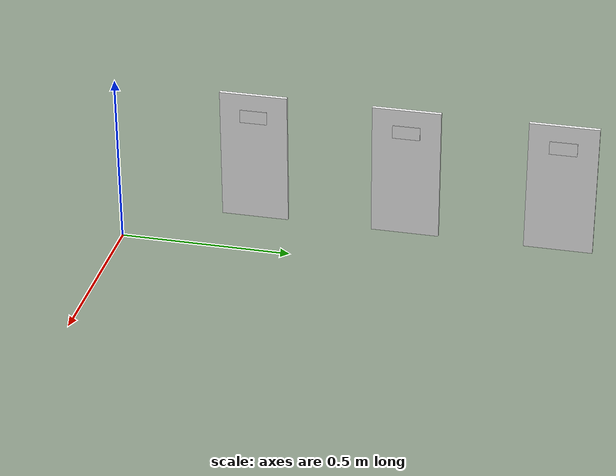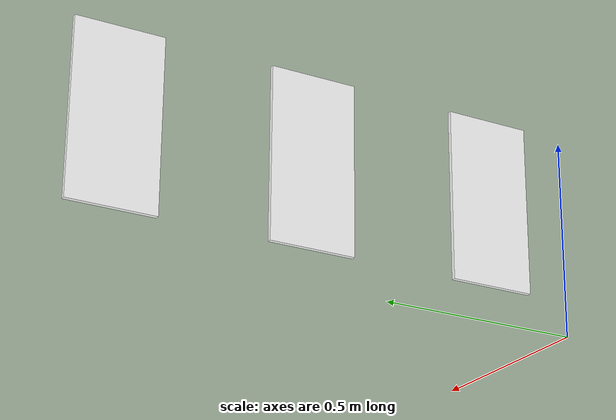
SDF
<?xml version="1.0" ?>
<sdf version="1.8">
  <model name="place_zone">
    <static>true</static>
    <link name="door_1">
      <pose>-0.195 1.25 0.2 0 0 0</pose>
      <collision name="collision">
        <geometry>
          <box>
            <size>0.01 0.2 0.4</size>
          </box>
        </geometry>
      </collision>
      <visual name="visual">
        <geometry>
          <box>
            <size>0.01 0.2 0.4</size>
          </box>
        </geometry>
        <material>
            <pbr>
              <metal>
                <albedo_map>model://turtlebot3_autorace_2025/place_zone/materials/textures/door.png</albedo_map>
              </metal>
            </pbr>
            <ambient>1 1 1 1</ambient>
            <diffuse>1 1 1 1</diffuse>
            <specular>0.2 0.2 0.2 1</specular>
            <emissive>0 0 0 1</emissive>
        </material>
      </visual>
    </link>

    <link name="panel_1">
      <pose>-0.19 1.25 0.33 0 0 0</pose>
      <visual name="visual">
        <geometry>
          <box>
            <size>0.005 0.08 0.04</size>
          </box>
        </geometry>
        <material>
            <pbr>
              <metal>
                <albedo_map>model://turtlebot3_autorace_2025/place_zone/materials/textures/103.png</albedo_map>
              </metal>
            </pbr>
            <ambient>1 1 1 1</ambient>
            <diffuse>1 1 1 1</diffuse>
            <specular>0.2 0.2 0.2 1</specular>
            <emissive>0 0 0 1</emissive>
        </material>
      </visual>
    </link>

    <link name="door_2">
      <pose>-0.195 0.8 0.2 0 0 0</pose>
      <collision name="collision">
        <geometry>
          <box>
            <size>0.01 0.2 0.4</size>
          </box>
        </geometry>
      </collision>
      <visual name="visual">
        <geometry>
          <box>
            <size>0.01 0.2 0.4</size>
          </box>
        </geometry>
        <material>
            <pbr>
              <metal>
                <albedo_map>model://turtlebot3_autorace_2025/place_zone/materials/textures/door.png</albedo_map>
              </metal>
            </pbr>
            <ambient>1 1 1 1</ambient>
            <diffuse>1 1 1 1</diffuse>
            <specular>0.2 0.2 0.2 1</specular>
            <emissive>0 0 0 1</emissive>
        </material>
      </visual>
    </link>

    <link name="panel_2">
      <pose>-0.19 0.8 0.33 0 0 0</pose>
      <visual name="visual">
        <geometry>
          <box>
            <size>0.005 0.08 0.04</size>
          </box>
        </geometry>
        <material>
            <pbr>
              <metal>
                <albedo_map>model://turtlebot3_autorace_2025/place_zone/materials/textures/102.png</albedo_map>
              </metal>
            </pbr>
            <ambient>1 1 1 1</ambient>
            <diffuse>1 1 1 1</diffuse>
            <specular>0.2 0.2 0.2 1</specular>
            <emissive>0 0 0 1</emissive>
        </material>
      </visual>
    </link>

    <link name="door_3">
      <pose>-0.195 0.35 0.2 0 0 0</pose>
      <collision name="collision">
        <geometry>
          <box>
            <size>0.01 0.2 0.4</size>
          </box>
        </geometry>
      </collision>
      <visual name="visual">
        <geometry>
          <box>
            <size>0.01 0.2 0.4</size>
          </box>
        </geometry>
        <material>
            <pbr>
              <metal>
                <albedo_map>model://turtlebot3_autorace_2025/place_zone/materials/textures/door.png</albedo_map>
              </metal>
            </pbr>
            <ambient>1 1 1 1</ambient>
            <diffuse>1 1 1 1</diffuse>
            <specular>0.2 0.2 0.2 1</specular>
            <emissive>0 0 0 1</emissive>
        </material>
      </visual>
    </link>

    <link name="panel_3">
      <pose>-0.19 0.35 0.33 0 0 0</pose>
      <visual name="visual">
        <geometry>
          <box>
            <size>0.005 0.08 0.04</size>
          </box>
        </geometry>
        <material>
            <pbr>
              <metal>
                <albedo_map>model://turtlebot3_autorace_2025/place_zone/materials/textures/101.png</albedo_map>
              </metal>
            </pbr>
            <ambient>1 1 1 1</ambient>
            <diffuse>1 1 1 1</diffuse>
            <specular>0.2 0.2 0.2 1</specular>
            <emissive>0 0 0 1</emissive>
        </material>
      </visual>
    </link>
  </model>
</sdf>
